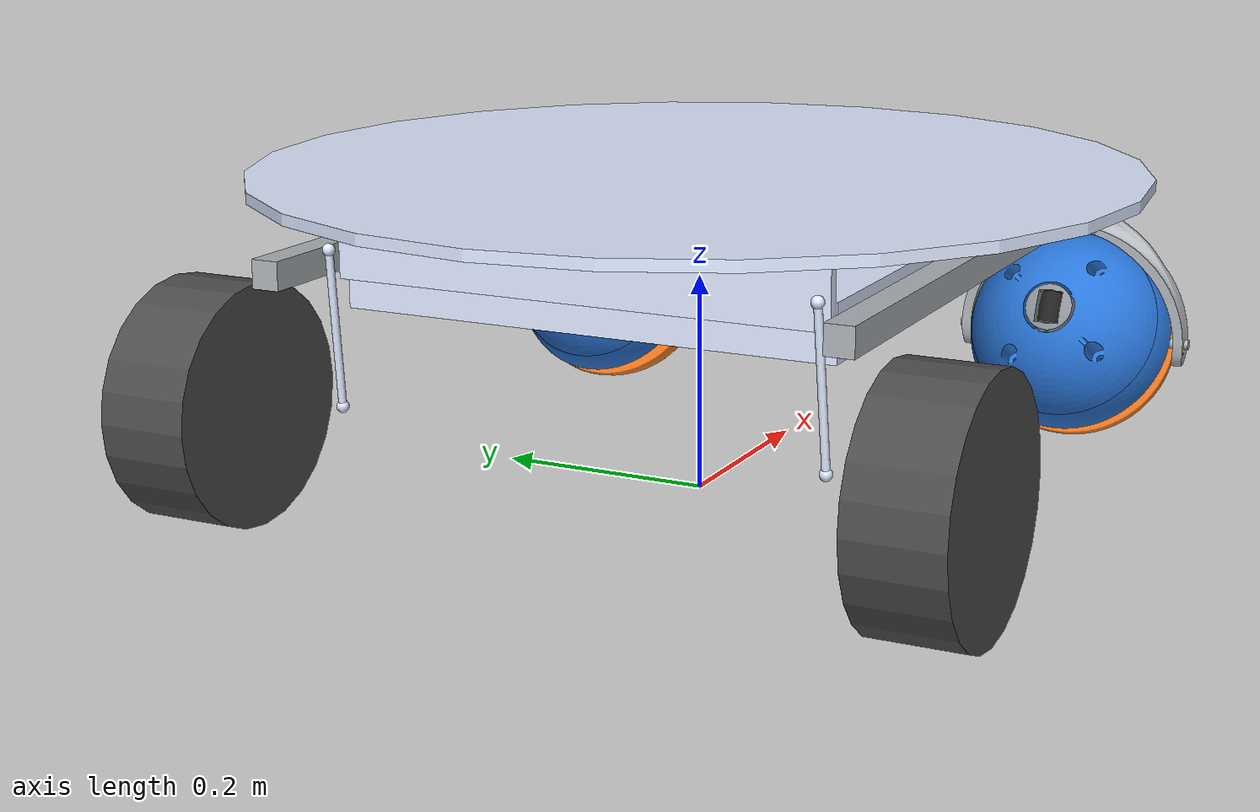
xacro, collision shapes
<?xml version="1.0"?>
<robot xmlns:xacro="http://www.ros.org/wiki/xacro" name="compa">
  <!-- Recording wrapper: original passive CAD casters, chassis and actuators.
       No caster joint is driven or prescribed. Original entrypoint is unchanged. -->
  <xacro:arg name="enable_closeup_camera" default="true"/>
  <xacro:include filename="compa_ball_caster.urdf.xacro"/>
  <xacro:include filename="ball_closeup_camera.xacro"/>
  <xacro:if value="$(arg enable_closeup_camera)">
    <xacro:ball_closeup_camera parent="right_rocker_link"/>
  </xacro:if>
</robot>

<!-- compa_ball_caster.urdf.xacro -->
<robot xmlns:xacro="http://www.ros.org/wiki/xacro" name="compa">
  <!-- GENERATED separate COMPA retrofit. See docs/CAD_FINDINGS.md and tools/prepare_compa_variant.py. -->
  <xacro:arg name="caster_mass_scale" default="1.0" />
  <xacro:arg name="carrier_phase" default="0.0" />
  <xacro:include filename="ball_caster.xacro" />
  <xacro:include filename="compa_common.xacro" />
  <xacro:include filename="compa_gazebo.xacro" />
  <link name="base_footprint" />
  <joint name="base_joint" type="fixed">
    <parent link="base_footprint" />
    <child link="base_link" />
    <origin xyz="0 0 0.22" rpy="0 0 0" />
  </joint>
  <link name="base_link">
    <xacro:box_inertia m="4.77" x="0.45" y="0.45" z="0.05" o_xyz="0 0 0" o_rpy="0 0 ${pi/2}" />
    <visual>
      <origin xyz="0 0 0" rpy="0 0 ${pi/2}" />
      <geometry>
        <mesh filename="package://hamr_ball_caster/meshes/compa/base_link.STL" />
      </geometry>
      <material name="">
        <color rgba="0.866666666666667 0.909803921568627 1 1" />
      </material>
    </visual>
    <collision>
      <origin xyz="0 0 0" rpy="0 0 ${pi/2}" />
      <geometry>
        <box size="0.45 0.45 0.05" />
      </geometry>
    </collision>
  </link>
  <link name="right_rocker_link">
    <xacro:box_inertia m="4.36949644437113" x="0.6658" y="0.0254" z="0.0254" o_xyz="0.0329 -0.072 -0.021" o_rpy="0 0 0" />
    <visual>
      <origin xyz="0.0329 -0.072 -0.021" rpy="0 0 0" />
      <geometry>
        <box size="0.6658 0.0254 0.0254" />
      </geometry>
      <material name="right_square_rail">
        <color rgba="0.68 0.70 0.72 1" />
      </material>
    </visual>
    <collision>
      <origin xyz="0.0329 -0.072 -0.021" rpy="0 0 0" />
      <geometry>
        <box size="0.6658 0.0254 0.0254" />
      </geometry>
    </collision>
  </link>
  <joint name="base_right_rocker_joint" type="continuous">
    <origin xyz="0 -0.184999999999999 0.0360999999999991" rpy="0 0 0" />
    <parent link="base_link" />
    <child link="right_rocker_link" />
    <axis xyz="0 1 0" />
  </joint>
  <link name="right_wheel_link">
    <xacro:cylinder_inertia m="20.74378098590227" r="0.1075" h="0.083" o_xyz="0 0 0" o_rpy="${-pi/2} 0 0" />
    <visual>
      <origin xyz="0.001 0.098 0" rpy="0 0 ${pi}" />
      <geometry>
        <mesh filename="package://hamr_ball_caster/meshes/compa/f_right_wheel_link.STL" />
      </geometry>
      <material name="">
        <color rgba="0.298039215686275 0.298039215686275 0.298039215686275 1" />
      </material>
    </visual>
    <collision>
      <origin xyz="0 0 0" rpy="${-pi/2} 0 0" />
      <geometry>
        <cylinder radius="0.1075" length="0.083" />
      </geometry>
    </collision>
  </link>
  <joint name="right_rocker_right_wheel_joint" type="continuous">
    <origin xyz="-0.27114 -0.14572 -0.1442" rpy="0 0 0" />
    <parent link="right_rocker_link" />
    <child link="right_wheel_link" />
    <axis xyz="0 1 0" />
  </joint>
  <link name="left_rocker_link">
    <xacro:box_inertia m="4.36949644437113" x="0.6658" y="0.0254" z="0.0254" o_xyz="0.0329 0.072 -0.021" o_rpy="0 0 0" />
    <visual>
      <origin xyz="0.0329 0.072 -0.021" rpy="0 0 0" />
      <geometry>
        <box size="0.6658 0.0254 0.0254" />
      </geometry>
      <material name="left_square_rail">
        <color rgba="0.68 0.70 0.72 1" />
      </material>
    </visual>
    <collision>
      <origin xyz="0.0329 0.072 -0.021" rpy="0 0 0" />
      <geometry>
        <box size="0.6658 0.0254 0.0254" />
      </geometry>
    </collision>
  </link>
  <joint name="base_left_rocker_joint" type="continuous">
    <origin xyz="0 0.185 0.0361" rpy="0 0 0" />
    <parent link="base_link" />
    <child link="left_rocker_link" />
    <axis xyz="0 1 0" />
  </joint>
  <link name="left_wheel_link">
    <xacro:cylinder_inertia m="20.74378098590227" r="0.1075" h="0.083" o_xyz="0 0 0" o_rpy="${-pi/2} 0 0" />
    <visual>
      <origin xyz="-0.001 -0.098 0" rpy="0 0 0" />
      <geometry>
        <mesh filename="package://hamr_ball_caster/meshes/compa/f_left_wheel_link.STL" />
      </geometry>
      <material name="">
        <color rgba="0.298039215686275 0.298039215686275 0.298039215686275 1" />
      </material>
    </visual>
    <collision>
      <origin xyz="0 0 0" rpy="${-pi/2} 0 0" />
      <geometry>
        <cylinder radius="0.1075" length="0.083" />
      </geometry>
    </collision>
  </link>
  <joint name="left_rocker_left_wheel_joint" type="continuous">
    <origin xyz="-0.27114 0.14572 -0.1442" rpy="0 0 0" />
    <parent link="left_rocker_link" />
    <child link="left_wheel_link" />
    <axis xyz="0 1 0" />
  </joint>
  <link name="roll_link">
    <xacro:box_inertia m="0.944517139921142" x="0.35" y="0.35" z="0.05" o_xyz="0 0 0" o_rpy="0 0 0" />
    <visual>
      <origin xyz="0 0 0" rpy="0 0 0" />
      <geometry>
        <mesh filename="package://hamr_ball_caster/meshes/compa/roll_link.STL" />
      </geometry>
      <material name="">
        <color rgba="0.866666666666667 0.909803921568627 1 1" />
      </material>
    </visual>
    <collision>
      <origin xyz="0 0 0" rpy="0 0 0" />
      <geometry>
        <box size="0.35 0.35 0.05" />
      </geometry>
    </collision>
  </link>
  <joint name="base_roll_joint" type="continuous">
    <origin xyz="0 0 0.03826" rpy="0 0 0" />
    <parent link="base_link" />
    <child link="roll_link" />
    <axis xyz="1 0 0" />
  </joint>
  <link name="pitch_link">
    <inertial>
      <origin xyz="-1.53612491524818E-06 0.0452818711897623 -0.00479118208676022" rpy="0 0 0" />
      <mass value="0.373399633584383" />
      <inertia ixx="0.000245121023174029" ixy="-1.04461141223475E-09" ixz="-5.02589593844006E-10" iyy="0.000177685960624184" iyz="-2.52895140798418E-05" izz="0.000294726650760256" />
    </inertial>
    <visual>
      <origin xyz="0 0 0" rpy="0 0 0" />
      <geometry>
        <mesh filename="package://hamr_ball_caster/meshes/compa/pitch_link.STL" />
      </geometry>
      <material name="">
        <color rgba="0.866666666666667 0.909803921568627 1 1" />
      </material>
    </visual>
    <collision>
      <origin xyz="0 0 0" rpy="0 0 0" />
      <geometry>
        <box size="0.07 0.3 0.05" />
      </geometry>
    </collision>
  </link>
  <joint name="roll_pitch_joint" type="continuous">
    <origin xyz="-0.0035 0 0" rpy="0 0 0" />
    <parent link="roll_link" />
    <child link="pitch_link" />
    <axis xyz="0 1 0" />
  </joint>
  <link name="yaw_plate_link">
    <inertial>
      <origin xyz="-0.00447913610788967 2.41196326362311E-05 -0.127371508973676" rpy="0 0 0" />
      <mass value="4.77359574593992" />
      <inertia ixx="0.137280882823545" ixy="2.12673978923993E-05" ixz="0.000121233585196392" iyy="0.141251293392401" iyz="-6.47537750501791E-07" izz="0.27812043683305" />
    </inertial>
    <visual>
      <origin xyz="0 0 0" rpy="0 0 ${pi}" />
      <geometry>
        <mesh filename="package://hamr_ball_caster/meshes/compa/yaw_plate_link.STL" />
      </geometry>
      <material name="">
        <color rgba="0.866666666666667 0.909803921568627 1 1" />
      </material>
    </visual>
    <collision>
      <origin xyz="0 0 0" rpy="0 0 0" />
      <geometry>
        <cylinder radius="0.4" length="0.01" />
      </geometry>
    </collision>
  </link>
  <joint name="pitch_yaw_plate_joint" type="continuous">
    <origin xyz="0 0 0.0375" rpy="0 0 0" />
    <parent link="pitch_link" />
    <child link="yaw_plate_link" />
    <axis xyz="0 0 1" />
  </joint>
  <link name="leverage_link">
    <inertial>
      <origin xyz="-0.0117745961443602 -3.98443129349599E-08 -0.000252346332911095" rpy="0 0 0" />
      <mass value="0.16962532718169" />
      <inertia ixx="0.00130897914050679" ixy="3.29957052469139E-12" ixz="-4.97883603410576E-09" iyy="5.88902413778525E-05" iyz="5.89893406244419E-11" izz="0.00125385800443425" />
    </inertial>
    <visual>
      <origin xyz="0 0 0" rpy="0 0 0" />
      <geometry>
        <mesh filename="package://hamr_ball_caster/meshes/compa/leverage_link.STL" />
      </geometry>
      <material name="">
        <color rgba="0.866666666666667 0.909803921568627 1 1" />
      </material>
    </visual>
    <collision>
      <origin xyz="0 0 0" rpy="0 0 0" />
      <geometry>
        <box size="0.01 0.45 0.07" />
      </geometry>
    </collision>
  </link>
  <joint name="base_leverage_joint" type="revolute">
    <origin xyz="-0.2332 0 0.03826" rpy="0 0 0" />
    <parent link="base_link" />
    <child link="leverage_link" />
    <axis xyz="1 0 0" />
    <limit effort="20" velocity="1.0" lower="${-pi/12}" upper="${pi/12}" />
  </joint>
  <link name="left_rod_sphere1_link">
    <inertial>
      <origin xyz="0.00536589340030799 -0.00133128905926821 -0.00337989932446242" rpy="0 0 0" />
      <mass value="0.0013014428485605" />
      <inertia ixx="1.60882150250237E-08" ixy="-5.10245749664677E-18" ixz="-4.13590306276514E-24" iyy="2.14375515430229E-08" iyz="3.44035962441191E-18" izz="1.60882150250237E-08" />
    </inertial>
    <visual>
      <origin xyz="0 0 0" rpy="0 0 0" />
      <geometry>
        <mesh filename="package://hamr_ball_caster/meshes/compa/sphere_link.STL" />
      </geometry>
      <material name="">
        <color rgba="0.866666666666667 0.909803921568627 1 1" />
      </material>
    </visual>
    <collision>
      <origin xyz="0 0 0" rpy="0 0 0" />
      <geometry>
        <sphere radius="0.0055" />
      </geometry>
    </collision>
  </link>
  <joint name="leverage_left_rod_sphere1_joint" type="fixed">
    <origin xyz="-0.024 0.222 -0.0064" rpy="0 0 1.5708" />
    <parent link="leverage_link" />
    <child link="left_rod_sphere1_link" />
  </joint>
  <link name="left_rod_link">
    <inertial>
      <origin xyz="0.00807999415461744 0.00132856456720257 -0.0766613810604778" rpy="0 0 0" />
      <mass value="0.0151753641367165" />
      <inertia ixx="3.27980169789714E-05" ixy="-5.95699180514602E-08" ixz="3.43503884989101E-06" iyy="3.31503405889854E-05" iyz="5.65386918327902E-07" izz="5.68009921841292E-07" />
    </inertial>
    <visual>
      <origin xyz="0 0 -0.07056" rpy="0 0 ${pi/2}" />
      <geometry>
        <mesh filename="package://hamr_ball_caster/meshes/compa/rod_link.STL" />
      </geometry>
      <material name="">
        <color rgba="0.866666666666667 0.909803921568627 1 1" />
      </material>
    </visual>
    <collision>
      <origin xyz="0 0 -0.07056" rpy="0 0 ${pi/2}" />
      <geometry>
        <cylinder radius="0.0035" length="${2*0.07056 - 0.007}" />
      </geometry>
    </collision>
  </link>
  <xacro:ball_joint parent="left_rod_sphere1_link" child="left_rod_link" joint_prefix="left_rod_sphere1" roll_offset="-0.1075" pitch_offset="-0.0171" />
  <link name="tmp_left_rod_sphere2_link">
    <inertial>
      <mass value="0.001" />
      <origin xyz="0 0 0" rpy="0 0 0" />
      <inertia ixx="0.000001" ixy="0" ixz="0" iyy="0.000001" iyz="0" izz="0.000001" />
    </inertial>
  </link>
  <xacro:ball_joint parent="left_rod_link" child="tmp_left_rod_sphere2_link" joint_prefix="tmp_left_rod_sphere2" z_offset="${-2*0.07056}" />
  <link name="left_rod_sphere2_link">
    <inertial>
      <origin xyz="0 0 0" rpy="0 0 0" />
      <mass value="0.0013014428485605" />
      <inertia ixx="1.60882150250237E-08" ixy="3.36977260250646E-23" ixz="4.13590306276514E-25" iyy="2.14375515430229E-08" iyz="-4.41668705567546E-23" izz="1.60882150250237E-08" />
    </inertial>
    <visual>
      <origin xyz="0 0 0" rpy="0 0 0" />
      <geometry>
        <mesh filename="package://hamr_ball_caster/meshes/compa/sphere_link.STL" />
      </geometry>
      <material name="">
        <color rgba="0.866666666666667 0.909803921568627 1 1" />
      </material>
    </visual>
    <collision>
      <origin xyz="0 0 0" rpy="0 0 0" />
      <geometry>
        <sphere radius="0.0055" />
      </geometry>
    </collision>
  </link>
  <joint name="left_rocker_rod_sphere2_joint" type="fixed">
    <origin xyz="-0.24206 0.0394 -0.14451" rpy="0 0 0" />
    <parent link="left_rocker_link" />
    <child link="left_rod_sphere2_link" />
  </joint>
  <link name="right_rod_sphere1_link">
    <inertial>
      <origin xyz="0.00532991500866456 0.00018815731486499 0.00563172775996076" rpy="0 0 0" />
      <mass value="0.0013014428485605" />
      <inertia ixx="1.60882150250237E-08" ixy="4.22440977042159E-18" ixz="-1.65436122510606E-24" iyy="2.14375515430229E-08" iyz="4.47501438672121E-18" izz="1.60882150250237E-08" />
    </inertial>
    <visual>
      <origin xyz="0 0 0" rpy="0 0 0" />
      <geometry>
        <mesh filename="package://hamr_ball_caster/meshes/compa/sphere_link.STL" />
      </geometry>
      <material name="">
        <color rgba="0.866666666666667 0.909803921568627 1 1" />
      </material>
    </visual>
    <collision>
      <origin xyz="0 0 0" rpy="0 0 0" />
      <geometry>
        <sphere radius="0.0055" />
      </geometry>
    </collision>
  </link>
  <joint name="leverage_right_rod_sphere1_joint" type="fixed">
    <origin xyz="-0.024 -0.222 -0.0064" rpy="0 0 1.5708" />
    <parent link="leverage_link" />
    <child link="right_rod_sphere1_link" />
  </joint>
  <link name="right_rod_link">
    <inertial>
      <origin xyz="0.00658807175193704 0.00108313190898462 -0.0625056704234719" rpy="0 0 0" />
      <mass value="0.0151753392872247" />
      <inertia ixx="3.27979872110313E-05" ixy="-5.95691313888852E-08" ixz="3.43504152367061E-06" iyy="3.31503109311604E-05" iyz="5.65357219897624E-07" izz="5.6800600012109E-07" />
    </inertial>
    <visual>
      <origin xyz="0 0 -0.07056" rpy="0 0 ${pi/2}" />
      <geometry>
        <mesh filename="package://hamr_ball_caster/meshes/compa/rod_link.STL" />
      </geometry>
      <material name="">
        <color rgba="0.866666666666667 0.909803921568627 1 1" />
      </material>
    </visual>
    <collision>
      <origin xyz="0 0 -0.07056" rpy="0 0 ${pi/2}" />
      <geometry>
        <cylinder radius="0.0035" length="${2*0.07056 - 0.007}" />
      </geometry>
    </collision>
  </link>
  <xacro:ball_joint parent="right_rod_sphere1_link" child="right_rod_link" joint_prefix="right_rod_sphere1" roll_offset="-0.1075" pitch_offset="0.0171" />
  <link name="tmp_right_rod_sphere2_link">
    <inertial>
      <mass value="0.001" />
      <origin xyz="0 0 0" rpy="0 0 0" />
      <inertia ixx="0.000001" ixy="0" ixz="0" iyy="0.000001" iyz="0" izz="0.000001" />
    </inertial>
  </link>
  <xacro:ball_joint parent="right_rod_link" child="tmp_right_rod_sphere2_link" joint_prefix="tmp_right_rod_sphere2" z_offset="${-2*0.07056}" />
  <link name="right_rod_sphere2_link">
    <inertial>
      <origin xyz="0 0 0" rpy="0 0 0" />
      <mass value="0.0013014428485605" />
      <inertia ixx="1.60882150250237E-08" ixy="4.03175187101389E-23" ixz="1.34416849539867E-24" iyy="2.14375515430229E-08" iyz="-9.48287106740403E-24" izz="1.60882150250237E-08" />
    </inertial>
    <visual>
      <origin xyz="0 0 0" rpy="0 0 0" />
      <geometry>
        <mesh filename="package://hamr_ball_caster/meshes/compa/sphere_link.STL" />
      </geometry>
      <material name="">
        <color rgba="0.866666666666667 0.909803921568627 1 1" />
      </material>
    </visual>
    <collision>
      <origin xyz="0 0 0" rpy="0 0 0" />
      <geometry>
        <sphere radius="0.0055" />
      </geometry>
    </collision>
  </link>
  <joint name="right_rocker_rod_sphere2_joint" type="fixed">
    <origin xyz="-0.24206 -0.0394 -0.14451" rpy="0 0 0" />
    <parent link="right_rocker_link" />
    <child link="right_rod_sphere2_link" />
  </joint>
  <xacro:ball_caster prefix="right_caster_" parent="right_rocker_link" center_xyz="0.315 -0.072 -0.15262" center_rpy="0 0 0" mass_scale="$(arg caster_mass_scale)" carrier_phase="$(arg carrier_phase)" />
  <xacro:ball_caster prefix="left_caster_" parent="left_rocker_link" center_xyz="0.315 0.072 -0.15262" center_rpy="0 0 0" mass_scale="$(arg caster_mass_scale)" carrier_phase="$(arg carrier_phase)" />
</robot>

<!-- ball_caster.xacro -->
<robot xmlns:xacro="http://www.ros.org/wiki/xacro" name="cad_split_ball_caster">
  <!-- GENERATED by tools/generate_model.py; edit config/provenance, not mesh poses. SI units. -->
  <xacro:macro name="ball_caster" params="prefix parent center_xyz:='0 0 0' center_rpy:='0 0 0' mass_scale:=1.0 carrier_phase:=0.0">
    <link name="${prefix}fork_link">
      <inertial>
        <origin xyz="-1.3599197126201e-07 2.860486982505e-05 0.091935870891651" />
        <mass value="${mass_scale * 0.81535135680881}" />
        <inertia ixx="${mass_scale * 0.0047211976629729}" ixy="${mass_scale * -3.5517404097827e-09}" ixz="${mass_scale * 3.842249794902e-09}" iyy="${mass_scale * 0.0028164757209925}" iyz="${mass_scale * 8.2243084640889e-09}" izz="${mass_scale * 0.0025994587581607}" />
      </inertial>
      <visual name="${prefix}ball_caster_shaft_2_1_visual">
        <origin xyz="0 0 0" rpy="2.7315965366358e-16 0.13412114902576 1.7417512486349e-17" />
        <geometry>
          <mesh filename="package://hamr_ball_caster/meshes/cad/ball_caster_shaft_2.stl" />
        </geometry>
        <material name="${prefix}fork_material">
          <color rgba="0.7 0.72 0.74 1" />
        </material>
      </visual>
      <collision name="${prefix}ball_caster_shaft_2_1_collision">
        <origin xyz="0 0 0" rpy="2.7315965366358e-16 0.13412114902576 1.7417512486349e-17" />
        <geometry>
          <mesh filename="package://hamr_ball_caster/meshes/cad/ball_caster_shaft_2.stl" />
        </geometry>
      </collision>
      <visual name="${prefix}caster_fork_1_visual">
        <origin xyz="0 0 0" rpy="3.1415926535898 0 -1.5707963267949" />
        <geometry>
          <mesh filename="package://hamr_ball_caster/meshes/cad/caster_fork.stl" />
        </geometry>
        <material name="${prefix}fork_material">
          <color rgba="0.7 0.72 0.74 1" />
        </material>
      </visual>
      <collision name="${prefix}caster_fork_1_collision">
        <origin xyz="0 0 0" rpy="3.1415926535898 0 -1.5707963267949" />
        <geometry>
          <mesh filename="package://hamr_ball_caster/meshes/cad/caster_fork.stl" />
        </geometry>
      </collision>
    </link>
    <gazebo reference="${prefix}fork_link">
      <selfCollide>false</selfCollide>
      <mu1>1.0</mu1>
      <mu2>1.0</mu2>
    </gazebo>
    <link name="${prefix}carrier_link">
      <inertial>
        <origin xyz="-2.133168032576e-08 -1.2227821200412e-07 3.878110010654e-08" />
        <mass value="${mass_scale * 0.38698373450096}" />
        <inertia ixx="${mass_scale * 0.00027350192546672}" ixy="${mass_scale * 9.9900177579252e-10}" ixz="${mass_scale * 0.00040459859435646}" iyy="${mass_scale * 0.0010428237231051}" iyz="${mass_scale * -5.5213106945674e-10}" izz="${mass_scale * 0.00084334325421017}" />
      </inertial>
      <visual name="${prefix}4668k11_permanently_lubricated_stainless_steel_ball_bearing_1_visual">
        <origin xyz="-0.088970459223414 6.8588413165423e-16 0.024766741857071" rpy="0.45307624399293 0.15982567044983 1.2548593889253" />
        <geometry>
          <mesh filename="package://hamr_ball_caster/meshes/cad/4668k11_permanently_lubricated_stainless_steel_ball_bearing.stl" />
        </geometry>
        <material name="${prefix}carrier_material">
          <color rgba="0.55 0.57 0.60 1" />
        </material>
      </visual>
      <visual name="${prefix}bearing_shaft2_1_visual">
        <origin xyz="0 0 0" rpy="1.5707963267949 1.0922075901177 3.1415926535898" />
        <geometry>
          <mesh filename="package://hamr_ball_caster/meshes/cad/bearing_shaft2.stl" />
        </geometry>
        <material name="${prefix}carrier_material">
          <color rgba="0.55 0.57 0.60 1" />
        </material>
      </visual>
      <collision name="${prefix}bearing_shaft2_1_collision">
        <origin xyz="0 0 0" rpy="1.5707963267949 1.0922075901177 3.1415926535898" />
        <geometry>
          <mesh filename="package://hamr_ball_caster/meshes/cad/bearing_shaft2.stl" />
        </geometry>
      </collision>
      <visual name="${prefix}5905k22_needle_roller_bearing_1_visual">
        <origin xyz="-1.3184492090813e-16 0.01905 -1.042718811455e-16" rpy="1.5707963267949 0.60871845433135 -3.1415926535898" />
        <geometry>
          <mesh filename="package://hamr_ball_caster/meshes/cad/5905k22_needle_roller_bearing.stl" />
        </geometry>
        <material name="${prefix}carrier_material">
          <color rgba="0.55 0.57 0.60 1" />
        </material>
      </visual>
      <visual name="${prefix}5905k22_needle_roller_bearing_2_visual">
        <origin xyz="3.1802981880823e-18 -0.01905 -1.2001068601845e-16" rpy="-1.5707963267949 -0.13260381745763 0" />
        <geometry>
          <mesh filename="package://hamr_ball_caster/meshes/cad/5905k22_needle_roller_bearing.stl" />
        </geometry>
        <material name="${prefix}carrier_material">
          <color rgba="0.55 0.57 0.60 1" />
        </material>
      </visual>
      <visual name="${prefix}collet_block_2_visual">
        <origin xyz="0 0 0" rpy="-2.0493850634721 0 -1.5707963267949" />
        <geometry>
          <mesh filename="package://hamr_ball_caster/meshes/cad/collet_block.stl" />
        </geometry>
        <material name="${prefix}carrier_material">
          <color rgba="0.55 0.57 0.60 1" />
        </material>
      </visual>
      <collision name="${prefix}collet_block_2_collision">
        <origin xyz="0 0 0" rpy="-2.0493850634721 0 -1.5707963267949" />
        <geometry>
          <mesh filename="package://hamr_ball_caster/meshes/cad/collet_block.stl" />
        </geometry>
      </collision>
      <visual name="${prefix}collet_block_3_visual">
        <origin xyz="0 0 0" rpy="2.0493850634721 0 1.5707963267949" />
        <geometry>
          <mesh filename="package://hamr_ball_caster/meshes/cad/collet_block.stl" />
        </geometry>
        <material name="${prefix}carrier_material">
          <color rgba="0.55 0.57 0.60 1" />
        </material>
      </visual>
      <collision name="${prefix}collet_block_3_collision">
        <origin xyz="0 0 0" rpy="2.0493850634721 0 1.5707963267949" />
        <geometry>
          <mesh filename="package://hamr_ball_caster/meshes/cad/collet_block.stl" />
        </geometry>
      </collision>
      <visual name="${prefix}roller_mount_1_visual">
        <origin xyz="-0.060359909726958 1.9287932241351e-16 0.031315831423634" rpy="1.5707963267949 -1.0922075901177 -7.5495165674511e-15" />
        <geometry>
          <mesh filename="package://hamr_ball_caster/meshes/cad/roller_mount.stl" />
        </geometry>
        <material name="${prefix}carrier_material">
          <color rgba="0.55 0.57 0.60 1" />
        </material>
      </visual>
      <collision name="${prefix}roller_mount_1_collision">
        <origin xyz="-0.060359909726958 1.9287932241351e-16 0.031315831423634" rpy="1.5707963267949 -1.0922075901177 -7.5495165674511e-15" />
        <geometry>
          <mesh filename="package://hamr_ball_caster/meshes/cad/roller_mount.stl" />
        </geometry>
      </collision>
      <visual name="${prefix}roller_mount_2_visual">
        <origin xyz="0.060359909726958 -1.3811343066965e-16 -0.031315831423634" rpy="-1.5707963267949 1.0922075901177 -3.1415926535898" />
        <geometry>
          <mesh filename="package://hamr_ball_caster/meshes/cad/roller_mount.stl" />
        </geometry>
        <material name="${prefix}carrier_material">
          <color rgba="0.55 0.57 0.60 1" />
        </material>
      </visual>
      <collision name="${prefix}roller_mount_2_collision">
        <origin xyz="0.060359909726958 -1.3811343066965e-16 -0.031315831423634" rpy="-1.5707963267949 1.0922075901177 -3.1415926535898" />
        <geometry>
          <mesh filename="package://hamr_ball_caster/meshes/cad/roller_mount.stl" />
        </geometry>
      </collision>
      <visual name="${prefix}4668k11_permanently_lubricated_stainless_steel_ball_bearing_2_visual">
        <origin xyz="-0.071480383162542 5.4945115298253e-16 0.05847810649787" rpy="0.46314632171208 0.12522539295774 1.3257140492452" />
        <geometry>
          <mesh filename="package://hamr_ball_caster/meshes/cad/4668k11_permanently_lubricated_stainless_steel_ball_bearing.stl" />
        </geometry>
        <material name="${prefix}carrier_material">
          <color rgba="0.55 0.57 0.60 1" />
        </material>
      </visual>
      <visual name="${prefix}4668k11_permanently_lubricated_stainless_steel_ball_bearing_3_visual">
        <origin xyz="0.071480383162542 -2.9012956509494e-16 -0.05847810649787" rpy="2.6646924774639 -0.041808928058327 -1.6515158407662" />
        <geometry>
          <mesh filename="package://hamr_ball_caster/meshes/cad/4668k11_permanently_lubricated_stainless_steel_ball_bearing.stl" />
        </geometry>
        <material name="${prefix}carrier_material">
          <color rgba="0.55 0.57 0.60 1" />
        </material>
      </visual>
      <visual name="${prefix}4668k11_permanently_lubricated_stainless_steel_ball_bearing_4_visual">
        <origin xyz="0.088970459223414 -1.6812812318935e-16 -0.024766741857072" rpy="2.6646924774639 -0.041808928058304 -1.6515158407662" />
        <geometry>
          <mesh filename="package://hamr_ball_caster/meshes/cad/4668k11_permanently_lubricated_stainless_steel_ball_bearing.stl" />
        </geometry>
        <material name="${prefix}carrier_material">
          <color rgba="0.55 0.57 0.60 1" />
        </material>
      </visual>
      <visual name="${prefix}roller_shaft_1_visual">
        <origin xyz="0.080225421192978 -2.8415196902364e-16 -0.041622424177471" rpy="-1.4392304055066 0.46150368964669 0.2888626140617" />
        <geometry>
          <mesh filename="package://hamr_ball_caster/meshes/cad/roller_shaft.stl" />
        </geometry>
        <material name="${prefix}carrier_material">
          <color rgba="0.55 0.57 0.60 1" />
        </material>
      </visual>
      <collision name="${prefix}roller_shaft_1_collision">
        <origin xyz="0.080225421192978 -2.8415196902364e-16 -0.041622424177471" rpy="-1.4392304055066 0.46150368964669 0.2888626140617" />
        <geometry>
          <mesh filename="package://hamr_ball_caster/meshes/cad/roller_shaft.stl" />
        </geometry>
      </collision>
      <visual name="${prefix}roller_shaft_2_visual">
        <origin xyz="-0.080225421192978 7.0151206739909e-16 0.041622424177471" rpy="1.0958134073629 -0.061014222721211 -1.688818554778" />
        <geometry>
          <mesh filename="package://hamr_ball_caster/meshes/cad/roller_shaft.stl" />
        </geometry>
        <material name="${prefix}carrier_material">
          <color rgba="0.55 0.57 0.60 1" />
        </material>
      </visual>
      <collision name="${prefix}roller_shaft_2_collision">
        <origin xyz="-0.080225421192978 7.0151206739909e-16 0.041622424177471" rpy="1.0958134073629 -0.061014222721211 -1.688818554778" />
        <geometry>
          <mesh filename="package://hamr_ball_caster/meshes/cad/roller_shaft.stl" />
        </geometry>
      </collision>
      <visual name="${prefix}spacing_5_visual">
        <origin xyz="-2.8952794135496e-17 -0.025399999999999 -2.5717006399238e-16" rpy="-3.1415926535898 -8.8817841970013e-16 1.5543122344752e-15" />
        <geometry>
          <mesh filename="package://hamr_ball_caster/meshes/cad/spacing.stl" />
        </geometry>
        <material name="${prefix}carrier_material">
          <color rgba="0.55 0.57 0.60 1" />
        </material>
      </visual>
      <visual name="${prefix}spacing_6_visual">
        <origin xyz="2.2696948974483e-16 -0.025399999999999 -1.4803878107189e-16" rpy="-8.8817841970013e-16 8.8817841970013e-16 -3.1415926535898" />
        <geometry>
          <mesh filename="package://hamr_ball_caster/meshes/cad/spacing.stl" />
        </geometry>
        <material name="${prefix}carrier_material">
          <color rgba="0.55 0.57 0.60 1" />
        </material>
      </visual>
      <visual name="${prefix}spacing_7_visual">
        <origin xyz="-1.4428355583671e-15 0.0324 -1.0306020025052e-15" rpy="-6.6613381477509e-16 0.52935104682236 -3.1415926535898" />
        <geometry>
          <mesh filename="package://hamr_ball_caster/meshes/cad/spacing.stl" />
        </geometry>
        <material name="${prefix}carrier_material">
          <color rgba="0.55 0.57 0.60 1" />
        </material>
      </visual>
      <visual name="${prefix}spacing_8_visual">
        <origin xyz="-1.5239597869526e-15 0.0324 -1.127420357788e-15" rpy="-3.1415926535898 -0.52935104682236 1.7763568394003e-15" />
        <geometry>
          <mesh filename="package://hamr_ball_caster/meshes/cad/spacing.stl" />
        </geometry>
        <material name="${prefix}carrier_material">
          <color rgba="0.55 0.57 0.60 1" />
        </material>
      </visual>
    </link>
    <gazebo reference="${prefix}carrier_link">
      <selfCollide>false</selfCollide>
      <mu1>1.0</mu1>
      <mu2>1.0</mu2>
    </gazebo>
    <link name="${prefix}positive_hemisphere_link">
      <inertial>
        <origin xyz="-0.036951230355081 -3.0749538233539e-08 0.019170577654182" />
        <mass value="${mass_scale * 2.0709380529089}" />
        <inertia ixx="${mass_scale * 0.0074861835508766}" ixy="${mass_scale * 3.531611927893e-07}" ixz="${mass_scale * -0.0013246743261826}" iyy="${mass_scale * 0.0049333432093748}" iyz="${mass_scale * 6.7342472776005e-07}" izz="${mass_scale * 0.005620185060156}" />
      </inertial>
      <visual name="${prefix}semi_spherical_wheel_1_visual">
        <origin xyz="1.7694179454963e-16 -5.5481220780721e-19 -1.2316536679435e-16" rpy="0.71065342193327 0.78699994929643 2.1182129953912" />
        <geometry>
          <mesh filename="package://hamr_ball_caster/meshes/cad/semi_spherical_wheel.stl" />
        </geometry>
        <material name="${prefix}positive_shell_material">
          <color rgba="0.16 0.46 0.85 1" />
        </material>
      </visual>
      <collision name="${prefix}semi_spherical_wheel_1_collision">
        <origin xyz="1.7694179454963e-16 -5.5481220780721e-19 -1.2316536679435e-16" rpy="0.71065342193327 0.78699994929643 2.1182129953912" />
        <geometry>
          <mesh filename="package://hamr_ball_caster/meshes/cad/semi_spherical_wheel.stl" />
        </geometry>
      </collision>
      <visual name="${prefix}semi_spherical_wheel_2_1_visual">
        <origin xyz="1.6306400674182e-16 4.4230204607359e-17 -1.0928757898654e-16" rpy="2.5650468234093 0.56460526687105 -1.9056289156507" />
        <geometry>
          <mesh filename="package://hamr_ball_caster/meshes/cad/semi_spherical_wheel_2.stl" />
        </geometry>
        <material name="${prefix}positive_shell_material">
          <color rgba="0.16 0.46 0.85 1" />
        </material>
      </visual>
      <collision name="${prefix}semi_spherical_wheel_2_1_collision">
        <origin xyz="1.6306400674182e-16 4.4230204607359e-17 -1.0928757898654e-16" rpy="2.5650468234093 0.56460526687105 -1.9056289156507" />
        <geometry>
          <mesh filename="package://hamr_ball_caster/meshes/cad/semi_spherical_wheel_2.stl" />
        </geometry>
      </collision>
      <visual name="${prefix}skate_bearing_1_visual">
        <origin xyz="-0.035531193727923 -3.8982107145221e-16 0.018434236865122" rpy="2.2832693225988 -0.78909905016034 1.020813189815" />
        <geometry>
          <mesh filename="package://hamr_ball_caster/meshes/cad/skate_bearing.stl" />
        </geometry>
        <material name="${prefix}positive_shell_material">
          <color rgba="0.16 0.46 0.85 1" />
        </material>
      </visual>
      <visual name="${prefix}5_16_18screw_1_visual">
        <origin xyz="-0.049595127823706 -0.04627728380063 -0.013657623600986" rpy="-0.453165069719 1.0330191027485 2.625793944819" />
        <geometry>
          <mesh filename="package://hamr_ball_caster/meshes/cad/5_16_18screw.stl" />
        </geometry>
        <material name="${prefix}positive_shell_material">
          <color rgba="0.16 0.46 0.85 1" />
        </material>
      </visual>
      <visual name="${prefix}5_16_18screw_2_visual">
        <origin xyz="-0.054805649469903 0.034963023382368 -0.023700678563831" rpy="-1.0905256490406 -0.080395600940615 1.5289833294768" />
        <geometry>
          <mesh filename="package://hamr_ball_caster/meshes/cad/5_16_18screw.stl" />
        </geometry>
        <material name="${prefix}positive_shell_material">
          <color rgba="0.16 0.46 0.85 1" />
        </material>
      </visual>
      <visual name="${prefix}5_16_18screw_3_visual">
        <origin xyz="-0.012181778345075 -0.034963023382369 0.05845498827778" rpy="-0.95501938998602 0.64795302416344 1.9743998503885" />
        <geometry>
          <mesh filename="package://hamr_ball_caster/meshes/cad/5_16_18screw.stl" />
        </geometry>
        <material name="${prefix}positive_shell_material">
          <color rgba="0.16 0.46 0.85 1" />
        </material>
      </visual>
      <visual name="${prefix}5_16_18screw_4_visual">
        <origin xyz="-0.017392299991271 0.046277283800629 0.048411933314935" rpy="1.0522011676212 -0.37877672733572 -1.362812985979" />
        <geometry>
          <mesh filename="package://hamr_ball_caster/meshes/cad/5_16_18screw.stl" />
        </geometry>
        <material name="${prefix}positive_shell_material">
          <color rgba="0.16 0.46 0.85 1" />
        </material>
      </visual>
      <visual name="${prefix}5_16nuts_1_visual">
        <origin xyz="-0.0047245302310451 0.046277283800628 0.04183966135298" rpy="2.1405937187466 0.54778722863856 1.8928473823869" />
        <geometry>
          <mesh filename="package://hamr_ball_caster/meshes/cad/5_16nuts.stl" />
        </geometry>
        <material name="${prefix}positive_shell_material">
          <color rgba="0.16 0.46 0.85 1" />
        </material>
      </visual>
      <visual name="${prefix}5_16nuts_2_visual">
        <origin xyz="-0.042137879709677 0.034963023382369 -0.030272950525786" rpy="2.1365234965122 0.53720132729304 1.8849636778078" />
        <geometry>
          <mesh filename="package://hamr_ball_caster/meshes/cad/5_16nuts.stl" />
        </geometry>
        <material name="${prefix}positive_shell_material">
          <color rgba="0.16 0.46 0.85 1" />
        </material>
      </visual>
      <visual name="${prefix}5_16nuts_3_visual">
        <origin xyz="0.0004859914151514 -0.034963023382369 0.051882716315824" rpy="2.1251703774556 0.50568558696175 1.8621758748594" />
        <geometry>
          <mesh filename="package://hamr_ball_caster/meshes/cad/5_16nuts.stl" />
        </geometry>
        <material name="${prefix}positive_shell_material">
          <color rgba="0.16 0.46 0.85 1" />
        </material>
      </visual>
      <visual name="${prefix}5_16nuts_4_visual">
        <origin xyz="-0.036927358063481 -0.046277283800629 -0.020229895562942" rpy="2.2003707786774 0.67269735420519 1.9968920047621" />
        <geometry>
          <mesh filename="package://hamr_ball_caster/meshes/cad/5_16nuts.stl" />
        </geometry>
        <material name="${prefix}positive_shell_material">
          <color rgba="0.16 0.46 0.85 1" />
        </material>
      </visual>
      <visual name="${prefix}flange_bearing_2_visual">
        <origin xyz="-0.017438333036995 -1.0612432377335e-19 0.0090473279394555" rpy="2.6219074061648 0.38353693871308 -1.7817100453473" />
        <geometry>
          <mesh filename="package://hamr_ball_caster/meshes/cad/flange_bearing.stl" />
        </geometry>
        <material name="${prefix}positive_shell_material">
          <color rgba="0.16 0.46 0.85 1" />
        </material>
      </visual>
      <visual name="${prefix}flange_bearing_3_visual">
        <origin xyz="-0.057253149667482 9.6279340218304e-17 0.029703987159182" rpy="-0.63075874525379 -0.67473128223081 -1.1428024187977" />
        <geometry>
          <mesh filename="package://hamr_ball_caster/meshes/cad/flange_bearing.stl" />
        </geometry>
        <material name="${prefix}positive_shell_material">
          <color rgba="0.16 0.46 0.85 1" />
        </material>
      </visual>
    </link>
    <gazebo reference="${prefix}positive_hemisphere_link">
      <selfCollide>false</selfCollide>
      <mu1>1.0</mu1>
      <mu2>1.0</mu2>
    </gazebo>
    <link name="${prefix}negative_hemisphere_link">
      <inertial>
        <origin xyz="0.036944402537414 -1.0642642877525e-07 -0.019167062591225" />
        <mass value="${mass_scale * 2.0383619968879}" />
        <inertia ixx="${mass_scale * 0.0074812878349042}" ixy="${mass_scale * -2.3862733495564e-07}" ixz="${mass_scale * -0.001328210524038}" iyy="${mass_scale * 0.0049224141573317}" iyz="${mass_scale * -4.5202301339493e-07}" izz="${mass_scale * 0.0056103135631599}" />
      </inertial>
      <visual name="${prefix}semi_spherical_wheel_2_2_visual">
        <origin xyz="-1.1102230246252e-16 1.9336361357266e-18 -2.2551405187698e-17" rpy="-0.5044896268357 -0.30859784072295 -1.4046428316972" />
        <geometry>
          <mesh filename="package://hamr_ball_caster/meshes/cad/semi_spherical_wheel_2.stl" />
        </geometry>
        <material name="${prefix}negative_shell_material">
          <color rgba="0.92 0.46 0.12 1" />
        </material>
      </visual>
      <collision name="${prefix}semi_spherical_wheel_2_2_collision">
        <origin xyz="-1.1102230246252e-16 1.9336361357266e-18 -2.2551405187698e-17" rpy="-0.5044896268357 -0.30859784072295 -1.4046428316972" />
        <geometry>
          <mesh filename="package://hamr_ball_caster/meshes/cad/semi_spherical_wheel_2.stl" />
        </geometry>
      </collision>
      <visual name="${prefix}semi_spherical_wheel_2_visual">
        <origin xyz="-9.0205620750794e-17 8.8725300396349e-18 -1.5612511283792e-17" rpy="-2.1538292924542 -0.98643883988159 0.66905578937253" />
        <geometry>
          <mesh filename="package://hamr_ball_caster/meshes/cad/semi_spherical_wheel.stl" />
        </geometry>
        <material name="${prefix}negative_shell_material">
          <color rgba="0.92 0.46 0.12 1" />
        </material>
      </visual>
      <collision name="${prefix}semi_spherical_wheel_2_collision">
        <origin xyz="-9.0205620750794e-17 8.8725300396349e-18 -1.5612511283792e-17" rpy="-2.1538292924542 -0.98643883988159 0.66905578937253" />
        <geometry>
          <mesh filename="package://hamr_ball_caster/meshes/cad/semi_spherical_wheel.stl" />
        </geometry>
      </collision>
      <visual name="${prefix}skate_bearing_2_visual">
        <origin xyz="0.035503010975954 3.9036127645923e-17 -0.018419615135008" rpy="-0.99892165266747 -0.55305845915749 1.2447737919122" />
        <geometry>
          <mesh filename="package://hamr_ball_caster/meshes/cad/skate_bearing.stl" />
        </geometry>
        <material name="${prefix}negative_shell_material">
          <color rgba="0.92 0.46 0.12 1" />
        </material>
      </visual>
      <visual name="${prefix}5_16_18screw_5_visual">
        <origin xyz="0.04263318490411 -0.054499072572978 0.0002387799347757" rpy="2.433973664829 -0.9197401634728 0.82169875960566" />
        <geometry>
          <mesh filename="package://hamr_ball_caster/meshes/cad/5_16_18screw.stl" />
        </geometry>
        <material name="${prefix}negative_shell_material">
          <color rgba="0.92 0.46 0.12 1" />
        </material>
      </visual>
      <visual name="${prefix}5_16_18screw_6_visual">
        <origin xyz="0.024354242910868 0.054499072572978 -0.034993089648725" rpy="2.5725069013098 -0.99239226180859 0.65236682451013" />
        <geometry>
          <mesh filename="package://hamr_ball_caster/meshes/cad/5_16_18screw.stl" />
        </geometry>
        <material name="${prefix}negative_shell_material">
          <color rgba="0.92 0.46 0.12 1" />
        </material>
      </visual>
      <visual name="${prefix}5_16_18screw_7_visual">
        <origin xyz="0.058592004634544 0.019845681864962 0.030998714271082" rpy="-2.0767204751395 -0.31662261187193 -1.3999784246436" />
        <geometry>
          <mesh filename="package://hamr_ball_caster/meshes/cad/5_16_18screw.stl" />
        </geometry>
        <material name="${prefix}negative_shell_material">
          <color rgba="0.92 0.46 0.12 1" />
        </material>
      </visual>
      <visual name="${prefix}5_16_18screw_8_visual">
        <origin xyz="0.0083954231804333 -0.019845681864962 -0.065753023985032" rpy="2.1599575648649 -0.59386007293376 1.2129201066781" />
        <geometry>
          <mesh filename="package://hamr_ball_caster/meshes/cad/5_16_18screw.stl" />
        </geometry>
        <material name="${prefix}negative_shell_material">
          <color rgba="0.92 0.46 0.12 1" />
        </material>
      </visual>
      <visual name="${prefix}5_16nuts_5_visual">
        <origin xyz="-0.0042723465797926 -0.019845681864962 -0.059180752023076" rpy="-0.50876555452625 -1.0153612961816 0.5808735522352" />
        <geometry>
          <mesh filename="package://hamr_ball_caster/meshes/cad/5_16nuts.stl" />
        </geometry>
        <material name="${prefix}negative_shell_material">
          <color rgba="0.92 0.46 0.12 1" />
        </material>
      </visual>
      <visual name="${prefix}5_16nuts_6_visual">
        <origin xyz="0.011686473150642 0.054499072572978 -0.02842081768677" rpy="1.0104123317138 -0.52275350587402 -1.2671984154294" />
        <geometry>
          <mesh filename="package://hamr_ball_caster/meshes/cad/5_16nuts.stl" />
        </geometry>
        <material name="${prefix}negative_shell_material">
          <color rgba="0.92 0.46 0.12 1" />
        </material>
      </visual>
      <visual name="${prefix}5_16nuts_7_visual">
        <origin xyz="0.029965415143884 -0.054499072572978 0.0068110518967311" rpy="-0.14315434932909 -1.0868381944458 0.16142406561222" />
        <geometry>
          <mesh filename="package://hamr_ball_caster/meshes/cad/5_16nuts.stl" />
        </geometry>
        <material name="${prefix}negative_shell_material">
          <color rgba="0.92 0.46 0.12 1" />
        </material>
      </visual>
      <visual name="${prefix}5_16nuts_8_visual">
        <origin xyz="0.045924234874319 0.019845681864962 0.037570986233038" rpy="0.76825306233286 0.87577945432673 -2.242383813969" />
        <geometry>
          <mesh filename="package://hamr_ball_caster/meshes/cad/5_16nuts.stl" />
        </geometry>
        <material name="${prefix}negative_shell_material">
          <color rgba="0.92 0.46 0.12 1" />
        </material>
      </visual>
    </link>
    <gazebo reference="${prefix}negative_hemisphere_link">
      <selfCollide>false</selfCollide>
      <mu1>1.0</mu1>
      <mu2>1.0</mu2>
    </gazebo>
    <link name="${prefix}positive_polar_roller_link">
      <inertial>
        <origin xyz="0 -1.5370836474374e-20 0" />
        <mass value="${mass_scale * 0.013223655784153}" />
        <inertia ixx="${mass_scale * 1.273356929078e-06}" ixy="${mass_scale * -1.0454631537301e-15}" ixz="${mass_scale * -2.2039970481233e-07}" iyy="${mass_scale * 1.3877043539344e-06}" iyz="${mass_scale * 5.4240561278526e-16}" izz="${mass_scale * 9.6289345777985e-07}" />
      </inertial>
      <visual name="${prefix}roller_2_visual">
        <origin xyz="0 0 0" rpy="-1.4346048172574 0.46024901835937 0.29926335305387" />
        <geometry>
          <mesh filename="package://hamr_ball_caster/meshes/cad/roller.stl" />
        </geometry>
        <material name="${prefix}positive_polar_roller_material">
          <color rgba="0.13 0.13 0.13 1" />
        </material>
      </visual>
      <collision name="${prefix}roller_2_collision">
        <origin xyz="0 0 0" rpy="-1.4346048172574 0.46024901835937 0.29926335305387" />
        <geometry>
          <mesh filename="package://hamr_ball_caster/meshes/cad/roller.stl" />
        </geometry>
      </collision>
    </link>
    <gazebo reference="${prefix}positive_polar_roller_link">
      <selfCollide>false</selfCollide>
      <mu1>1.0</mu1>
      <mu2>1.0</mu2>
    </gazebo>
    <link name="${prefix}negative_polar_roller_link">
      <inertial>
        <origin xyz="0 8.2732296049671e-21 0" />
        <mass value="${mass_scale * 0.013223655784153}" />
        <inertia ixx="${mass_scale * 1.2733569321509e-06}" ixy="${mass_scale * -1.1545655675093e-15}" ixz="${mass_scale * -2.2039970640658e-07}" iyy="${mass_scale * 1.3877043500344e-06}" iyz="${mass_scale * 5.99010233507e-16}" izz="${mass_scale * 9.6289345860698e-07}" />
      </inertial>
      <visual name="${prefix}roller_1_visual">
        <origin xyz="0 0 0" rpy="1.1104924496602 -0.13599289066107 -1.8377024180979" />
        <geometry>
          <mesh filename="package://hamr_ball_caster/meshes/cad/roller.stl" />
        </geometry>
        <material name="${prefix}negative_polar_roller_material">
          <color rgba="0.13 0.13 0.13 1" />
        </material>
      </visual>
      <collision name="${prefix}roller_1_collision">
        <origin xyz="0 0 0" rpy="1.1104924496602 -0.13599289066107 -1.8377024180979" />
        <geometry>
          <mesh filename="package://hamr_ball_caster/meshes/cad/roller.stl" />
        </geometry>
      </collision>
    </link>
    <gazebo reference="${prefix}negative_polar_roller_link">
      <selfCollide>false</selfCollide>
      <mu1>1.0</mu1>
      <mu2>1.0</mu2>
    </gazebo>
    <joint name="${prefix}mount_joint" type="fixed">
      <parent link="${parent}" />
      <child link="${prefix}fork_link" />
      <origin xyz="${center_xyz}" rpy="${center_rpy}" />
    </joint>
    <gazebo reference="${prefix}mount_joint">
      <preserveFixedJoint>true</preserveFixedJoint>
    </gazebo>
    <joint name="${prefix}carrier_joint" type="continuous">
      <parent link="${prefix}fork_link" />
      <child link="${prefix}carrier_link" />
      <origin xyz="0 0 0" rpy="0 ${-carrier_phase} 0" />
      <axis xyz="0 -1 0" />
      <limit effort="100" velocity="1000" />
      <dynamics damping="0.0002" friction="0.0" />
    </joint>
    <joint name="${prefix}positive_hemisphere_joint" type="continuous">
      <parent link="${prefix}carrier_link" />
      <child link="${prefix}positive_hemisphere_link" />
      <origin xyz="0 0 0" />
      <axis xyz="-0.8876457312788 -5.6516578430981e-15 0.4605269327005" />
      <limit effort="100" velocity="1000" />
      <dynamics damping="0.0002" friction="0.0" />
    </joint>
    <joint name="${prefix}positive_polar_roller_joint" type="continuous">
      <parent link="${prefix}carrier_link" />
      <child link="${prefix}positive_polar_roller_link" />
      <origin xyz="-0.080225421192978 6.8040911579084e-16 0.041622424177471" />
      <axis xyz="-0.4605269327005 -4.9764123225193e-17 -0.8876457312788" />
      <limit effort="100" velocity="1000" />
      <dynamics damping="5e-05" friction="0.0" />
    </joint>
    <joint name="${prefix}negative_hemisphere_joint" type="continuous">
      <parent link="${prefix}carrier_link" />
      <child link="${prefix}negative_hemisphere_link" />
      <origin xyz="0 0 0" />
      <axis xyz="0.8876457312788 5.6516578430981e-15 -0.4605269327005" />
      <limit effort="100" velocity="1000" />
      <dynamics damping="0.0002" friction="0.0" />
    </joint>
    <joint name="${prefix}negative_polar_roller_joint" type="continuous">
      <parent link="${prefix}carrier_link" />
      <child link="${prefix}negative_polar_roller_link" />
      <origin xyz="0.080225421192978 -2.8043167259144e-16 -0.041622424177471" />
      <axis xyz="0.4605269327005 -4.4187884109047e-16 0.8876457312788" />
      <limit effort="100" velocity="1000" />
      <dynamics damping="5e-05" friction="0.0" />
    </joint>
  </xacro:macro>
</robot>

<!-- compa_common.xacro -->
<robot xmlns:xacro="http://www.ros.org/wiki/xacro">

    <xacro:macro name="ball_joint" params="parent child joint_prefix
        x_offset:=0 y_offset:=0 z_offset:=0
        roll_offset:=0 pitch_offset:=0 yaw_offset:=0
        mass:=0.001 r:=0.01 lim:=1.57">

        <!-- Isotropic inertia for a solid sphere: I = (2/5) m r^2  -->
        <xacro:property name="I_diag" value="${0.4*mass*(r**2)}"/>

        <link name="${joint_prefix}_t1">
            <inertial>
            <mass value="${mass}"/>
            <origin xyz="0 0 0" rpy="0 0 0"/>
            <inertia ixx="${I_diag}" ixy="0" ixz="0" iyy="${I_diag}" iyz="0" izz="${I_diag}"/>
            </inertial>
        </link>

        <link name="${joint_prefix}_t2">
            <inertial>
            <mass value="${mass}"/>
            <origin xyz="0 0 0" rpy="0 0 0"/>
            <inertia ixx="${I_diag}" ixy="0" ixz="0" iyy="${I_diag}" iyz="0" izz="${I_diag}"/>
            </inertial>
        </link>

        <link name="${joint_prefix}_t3">
            <inertial>
            <mass value="${mass}"/>
            <origin xyz="0 0 0" rpy="0 0 0"/>
            <inertia ixx="${I_diag}" ixy="0" ixz="0" iyy="${I_diag}" iyz="0" izz="${I_diag}"/>
            </inertial>
        </link>

        <joint name="${joint_prefix}_rev_x" type="revolute">
            <parent link="${parent}"/><child link="${joint_prefix}_t1"/>
            <origin xyz="${x_offset} ${y_offset} ${z_offset}" rpy="${roll_offset} 0 0"/><axis xyz="1 0 0"/>
            <limit lower="-${lim}" upper="${lim}" effort="1" velocity="1"/>
        </joint>

        <joint name="${joint_prefix}_rev_y" type="revolute">
            <parent link="${joint_prefix}_t1"/><child link="${joint_prefix}_t2"/>
            <origin xyz="0 0 0" rpy="0 ${pitch_offset} 0"/><axis xyz="0 1 0"/>
            <limit lower="-${lim}" upper="${lim}" effort="1" velocity="1"/>
        </joint>

        <joint name="${joint_prefix}_rev_z" type="continuous">
            <parent link="${joint_prefix}_t2"/><child link="${joint_prefix}_t3"/>
            <origin xyz="0 0 0" rpy="0 0 ${yaw_offset}"/><axis xyz="0 0 1"/>
        </joint>

        <joint name="${joint_prefix}_fixed" type="fixed">
            <parent link="${joint_prefix}_t3"/><child link="${child}"/>
            <origin xyz="0 0 0" rpy="0 0 0"/>
        </joint>
    </xacro:macro>

    <xacro:macro name="box_inertia" params="m x y z o_xyz o_rpy">
        <inertial>
            <mass value="${m}" />
            <origin xyz="${o_xyz}" rpy="${o_rpy}" />
            <inertia ixx="${(m/12) * (y*y + z*z)}" ixy="0" ixz="0"
                     iyy="${(m/12) * (x*x + z*z)}" iyz="0"
                     izz="${(m/12) * (y*y + x*x)}" />
        </inertial>
    </xacro:macro>

    <xacro:macro name="sphere_inertia" params="m r o_xyz o_rpy">
        <inertial>
            <mass value="${m}" />
            <origin xyz="${o_xyz}" rpy="${o_rpy}" />
            <inertia ixx="${(2/5) * m * r*r}" ixy="0" ixz="0"
                    iyy="${(2/5) * m * r*r}" iyz="0"
                    izz="${(2/5) * m * r*r}" />
        </inertial>
    </xacro:macro>

    <xacro:macro name="cylinder_inertia" params="m r h o_xyz:='0 0 0' o_rpy:='0 0 0'">
        <inertial>
            <mass value="${m}" />
            <origin xyz="${o_xyz}" rpy="${o_rpy}" />
            <inertia ixx="${(m/12) * (3*r*r + h*h)}" ixy="0" ixz="0"
                     iyy="${(m/12) * (3*r*r + h*h)}" iyz="0"
                     izz="${(m/2) * (r*r)}" />
        </inertial>
    </xacro:macro>

</robot>

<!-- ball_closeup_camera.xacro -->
<robot xmlns:xacro="http://www.ros.org/wiki/xacro">
  <xacro:macro name="ball_closeup_camera" params="parent">
    <!-- Same external side camera as the ordinary-caster comparison. The sensor
         follows the rocker, never a freely rotating ball component. -->
    <link name="ball_closeup_camera_link">
      <inertial><mass value="0.001"/><inertia ixx="0.000001" iyy="0.000001" izz="0.000001" ixy="0" ixz="0" iyz="0"/></inertial>
    </link>
    <joint name="ball_closeup_camera_joint" type="fixed">
      <parent link="${parent}"/><child link="ball_closeup_camera_link"/>
      <origin xyz="0.185 -0.55 0.01" rpy="0 0.312 1.3506"/>
    </joint>
    <gazebo reference="ball_closeup_camera_link">
      <sensor name="ball_caster_closeup" type="camera">
        <always_on>true</always_on><update_rate>25</update_rate><visualize>false</visualize>
        <topic>/hamr/ball_caster/closeup/image</topic>
        <camera><horizontal_fov>1.0</horizontal_fov><image><width>1280</width><height>720</height><format>R8G8B8</format></image><clip><near>0.02</near><far>100</far></clip></camera>
      </sensor>
    </gazebo>
  </xacro:macro>
</robot>
